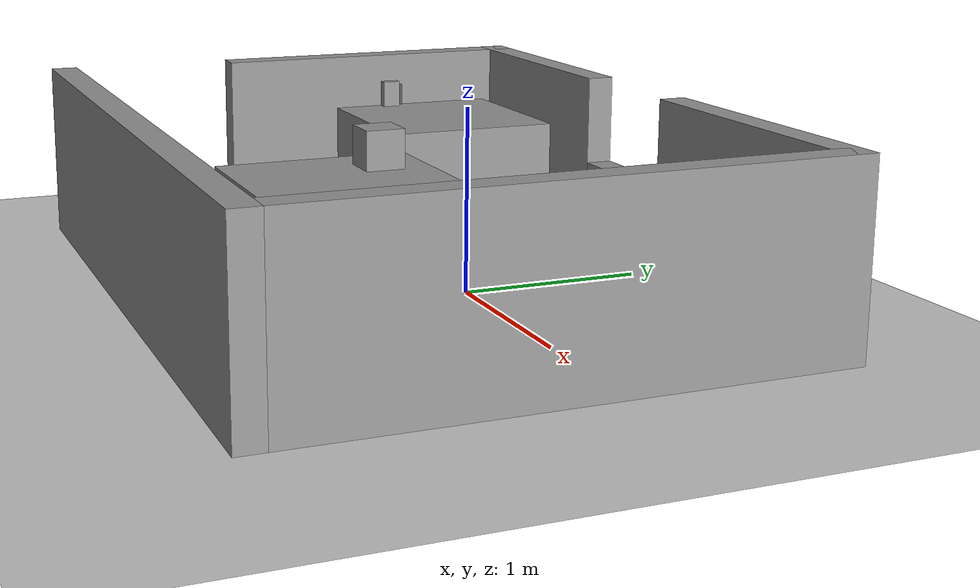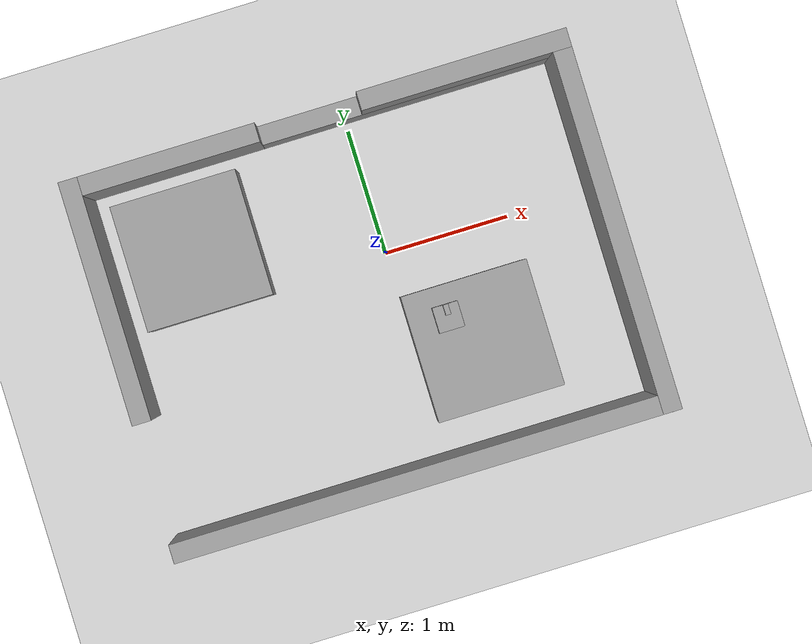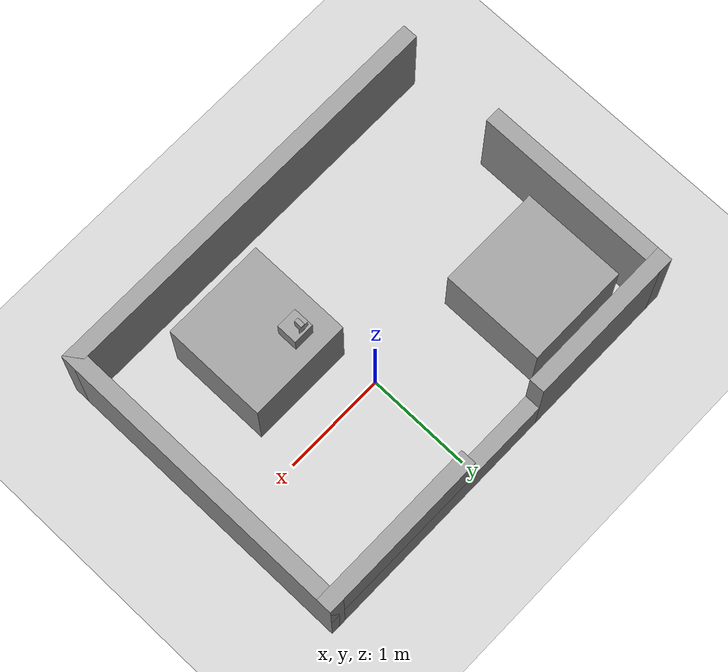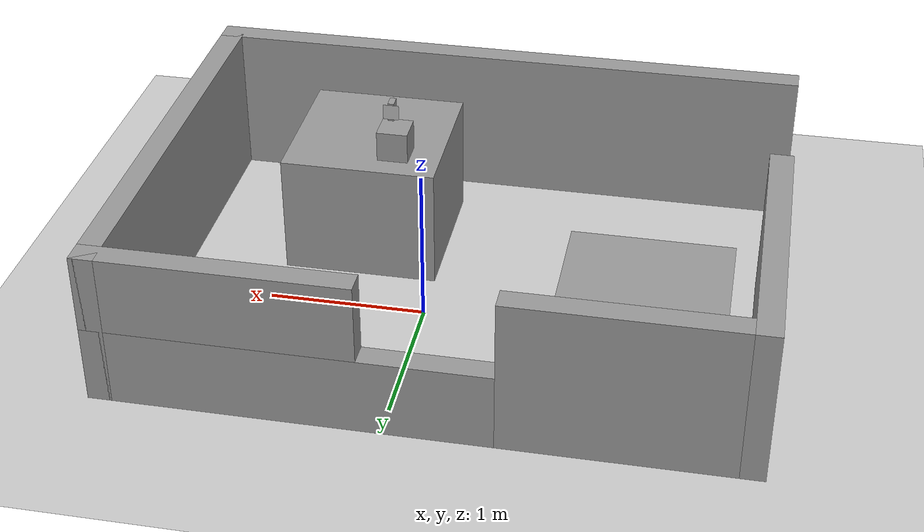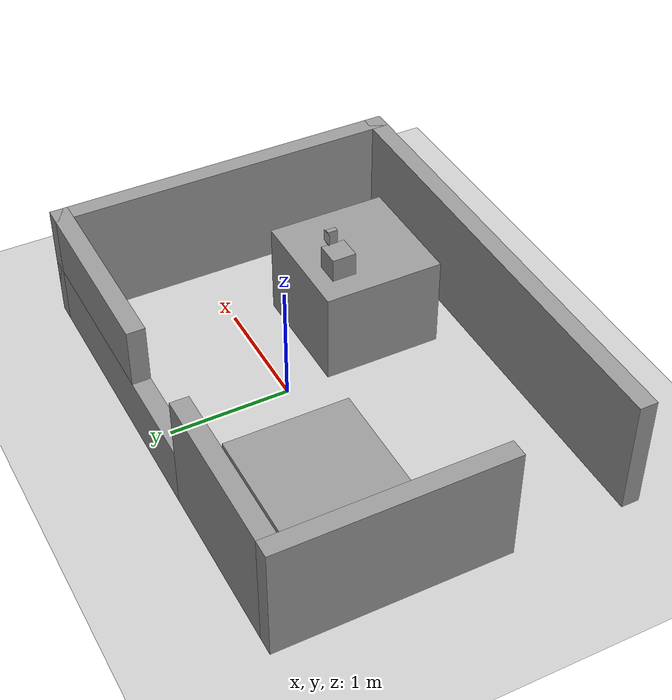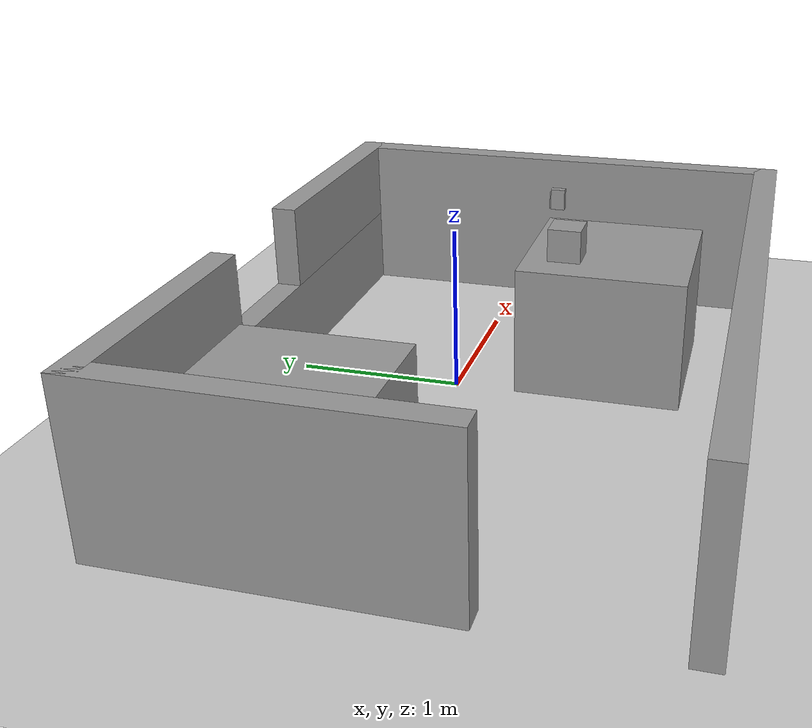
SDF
<sdf version="1.7">
 <world name="default">
  <light name="sun" type="directional">
   <pose>0 0 10 0 -0 0</pose>
   <diffuse>0.8 0.8 0.8 1</diffuse>
   <specular>0.2 0.2 0.2 1</specular>
   <attenuation>
    <range>1000</range>
    <constant>0.9</constant>
    <linear>0.01</linear>
    <quadratic>0.001</quadratic>
   </attenuation>
   <direction>-0.5 0.1 -0.9</direction>
   <spot><inner_angle>0</inner_angle><outer_angle>0</outer_angle><falloff>0</falloff></spot>
  </light>
  <model name="ground_plane">
   <static>1</static>
   <link name="link">
    <collision name="collision">
     <geometry><plane><normal>0 0 1</normal><size>100 100</size></plane></geometry>
     <surface><friction><ode><mu>100</mu><mu2>50</mu2></ode></friction></surface>
    </collision>
    <visual name="visual">
     <cast_shadows>0</cast_shadows>
     <geometry><plane><normal>0 0 1</normal><size>100 100</size></plane></geometry>
     <material>
      <script><uri>file://media/materials/scripts/gazebo.material</uri><name>Gazebo/Grey</name></script>
     </material>
    </visual>
   </link>
  </model>
  <gravity>0 0 -9.8</gravity>
  <magnetic_field>6e-06 2.3e-05 -4.2e-05</magnetic_field>
  <atmosphere type="adiabatic"/>
  <physics type="ode">
   <max_step_size>0.001</max_step_size>
   <real_time_factor>1</real_time_factor>
   <real_time_update_rate>1000</real_time_update_rate>
  </physics>
  <scene><ambient>0.4 0.4 0.4 1</ambient><background>0.7 0.7 0.7 1</background><shadows>1</shadows></scene>
  <audio><device>default</device></audio>
  <spherical_coordinates>
   <surface_model>EARTH_WGS84</surface_model>
   <latitude_deg>0</latitude_deg>
   <longitude_deg>0</longitude_deg>
   <elevation>0</elevation>
   <heading_deg>0</heading_deg>
  </spherical_coordinates>
  <model name="robot_office">
   <link name="Wall_10">
    <pose>-1.925 0 0 0 -0 1.5708</pose>
    <inertial>
     <mass>1</mass>
     <inertia><ixx>1</ixx><ixy>0</ixy><ixz>0</ixz><iyy>1</iyy><iyz>0</iyz><izz>1</izz></inertia>
    </inertial>
    <visual name="Wall_10_Visual_1">
     <pose>0.541901 0 0.5 0 -0 0</pose>
     <geometry><box><size>1.9162 0.15 1</size></box></geometry>
     <material>
      <script><uri>file://media/materials/scripts/gazebo.material</uri><name>Gazebo/Grey</name></script>
      <ambient>1 1 1 1</ambient>
      <shader type="pixel"><normal_map>__default__</normal_map></shader>
      <diffuse>0.7 0.7 0.7 1</diffuse>
      <specular>0.01 0.01 0.01 1</specular>
      <emissive>0 0 0 1</emissive>
     </material>
     <meta><layer>0</layer></meta>
    </visual>
    <collision name="Wall_10_Collision_1">
     <pose>0.541901 0 0.5 0 -0 0</pose>
     <geometry><box><size>1.9162 0.15 1</size></box></geometry>
     <surface>
      <friction>
       <ode><mu>1</mu><mu2>1</mu2><fdir1>0 0 0</fdir1><slip1>0</slip1><slip2>0</slip2></ode>
       <torsional>
        <coefficient>1</coefficient>
        <patch_radius>0</patch_radius>
        <surface_radius>0</surface_radius>
        <use_patch_radius>1</use_patch_radius>
        <ode><slip>0</slip></ode>
       </torsional>
      </friction>
      <bounce><restitution_coefficient>0</restitution_coefficient><threshold>1e+06</threshold></bounce>
      <contact>
       <collide_without_contact>0</collide_without_contact>
       <collide_without_contact_bitmask>1</collide_without_contact_bitmask>
       <collide_bitmask>1</collide_bitmask>
       <ode>
        <soft_cfm>0</soft_cfm>
        <soft_erp>0.2</soft_erp>
        <kp>1e+13</kp>
        <kd>1</kd>
        <max_vel>0.01</max_vel>
        <min_depth>0</min_depth>
       </ode>
       <bullet>
        <split_impulse>1</split_impulse>
        <split_impulse_penetration_threshold>-0.01</split_impulse_penetration_threshold>
        <soft_cfm>0</soft_cfm>
        <soft_erp>0.2</soft_erp>
        <kp>1e+13</kp>
        <kd>1</kd>
       </bullet>
      </contact>
     </surface>
    </collision>
   </link>
   <link name="Wall_7">
    <pose>0 1.425 0 0 -0 0</pose>
    <inertial>
     <mass>1</mass>
     <inertia><ixx>1</ixx><ixy>0</ixy><ixz>0</ixz><iyy>1</iyy><iyz>0</iyz><izz>1</izz></inertia>
    </inertial>
    <visual name="Wall_7_Visual_0">
     <pose>-1.22678 0 0.5 0 -0 0</pose>
     <geometry><box><size>1.54644 0.15 1</size></box></geometry>
     <material>
      <script><uri>file://media/materials/scripts/gazebo.material</uri><name>Gazebo/Grey</name></script>
      <ambient>1 1 1 1</ambient>
      <shader type="pixel"><normal_map>__default__</normal_map></shader>
      <diffuse>0.7 0.7 0.7 1</diffuse>
      <specular>0.01 0.01 0.01 1</specular>
      <emissive>0 0 0 1</emissive>
     </material>
     <meta><layer>0</layer></meta>
    </visual>
    <visual name="Wall_7_Visual_1">
     <pose>0.773218 0 0.25 0 -0 0</pose>
     <geometry><box><size>2.45356 0.15 0.5</size></box></geometry>
     <material>
      <script><uri>file://media/materials/scripts/gazebo.material</uri><name>Gazebo/Grey</name></script>
      <ambient>1 1 1 1</ambient>
      <shader type="pixel"><normal_map>__default__</normal_map></shader>
      <diffuse>0.7 0.7 0.7 1</diffuse>
      <specular>0.01 0.01 0.01 1</specular>
      <emissive>0 0 0 1</emissive>
     </material>
     <meta><layer>0</layer></meta>
    </visual>
    <visual name="Wall_7_Visual_2">
     <pose>1.17322 0 0.75 0 -0 0</pose>
     <geometry><box><size>1.65356 0.15 0.5</size></box></geometry>
     <material>
      <script><uri>file://media/materials/scripts/gazebo.material</uri><name>Gazebo/Grey</name></script>
      <ambient>1 1 1 1</ambient>
      <shader type="pixel"><normal_map>__default__</normal_map></shader>
      <diffuse>0.7 0.7 0.7 1</diffuse>
      <specular>0.01 0.01 0.01 1</specular>
      <emissive>0 0 0 1</emissive>
     </material>
     <meta><layer>0</layer></meta>
    </visual>
    <collision name="Wall_7_Collision_0">
     <pose>-1.22678 0 0.5 0 -0 0</pose>
     <geometry><box><size>1.54644 0.15 1</size></box></geometry>
     <surface>
      <friction>
       <ode><mu>1</mu><mu2>1</mu2><fdir1>0 0 0</fdir1><slip1>0</slip1><slip2>0</slip2></ode>
       <torsional>
        <coefficient>1</coefficient>
        <patch_radius>0</patch_radius>
        <surface_radius>0</surface_radius>
        <use_patch_radius>1</use_patch_radius>
        <ode><slip>0</slip></ode>
       </torsional>
      </friction>
      <bounce><restitution_coefficient>0</restitution_coefficient><threshold>1e+06</threshold></bounce>
      <contact>
       <collide_without_contact>0</collide_without_contact>
       <collide_without_contact_bitmask>1</collide_without_contact_bitmask>
       <collide_bitmask>1</collide_bitmask>
       <ode>
        <soft_cfm>0</soft_cfm>
        <soft_erp>0.2</soft_erp>
        <kp>1e+13</kp>
        <kd>1</kd>
        <max_vel>0.01</max_vel>
        <min_depth>0</min_depth>
       </ode>
       <bullet>
        <split_impulse>1</split_impulse>
        <split_impulse_penetration_threshold>-0.01</split_impulse_penetration_threshold>
        <soft_cfm>0</soft_cfm>
        <soft_erp>0.2</soft_erp>
        <kp>1e+13</kp>
        <kd>1</kd>
       </bullet>
      </contact>
     </surface>
    </collision>
    <collision name="Wall_7_Collision_1">
     <pose>0.773218 0 0.25 0 -0 0</pose>
     <geometry><box><size>2.45356 0.15 0.5</size></box></geometry>
     <surface>
      <friction>
       <ode><mu>1</mu><mu2>1</mu2><fdir1>0 0 0</fdir1><slip1>0</slip1><slip2>0</slip2></ode>
       <torsional>
        <coefficient>1</coefficient>
        <patch_radius>0</patch_radius>
        <surface_radius>0</surface_radius>
        <use_patch_radius>1</use_patch_radius>
        <ode><slip>0</slip></ode>
       </torsional>
      </friction>
      <bounce><restitution_coefficient>0</restitution_coefficient><threshold>1e+06</threshold></bounce>
      <contact>
       <collide_without_contact>0</collide_without_contact>
       <collide_without_contact_bitmask>1</collide_without_contact_bitmask>
       <collide_bitmask>1</collide_bitmask>
       <ode>
        <soft_cfm>0</soft_cfm>
        <soft_erp>0.2</soft_erp>
        <kp>1e+13</kp>
        <kd>1</kd>
        <max_vel>0.01</max_vel>
        <min_depth>0</min_depth>
       </ode>
       <bullet>
        <split_impulse>1</split_impulse>
        <split_impulse_penetration_threshold>-0.01</split_impulse_penetration_threshold>
        <soft_cfm>0</soft_cfm>
        <soft_erp>0.2</soft_erp>
        <kp>1e+13</kp>
        <kd>1</kd>
       </bullet>
      </contact>
     </surface>
    </collision>
    <collision name="Wall_7_Collision_2">
     <pose>1.17322 0 0.75 0 -0 0</pose>
     <geometry><box><size>1.65356 0.15 0.5</size></box></geometry>
     <surface>
      <friction>
       <ode><mu>1</mu><mu2>1</mu2><fdir1>0 0 0</fdir1><slip1>0</slip1><slip2>0</slip2></ode>
       <torsional>
        <coefficient>1</coefficient>
        <patch_radius>0</patch_radius>
        <surface_radius>0</surface_radius>
        <use_patch_radius>1</use_patch_radius>
        <ode><slip>0</slip></ode>
       </torsional>
      </friction>
      <bounce><restitution_coefficient>0</restitution_coefficient><threshold>1e+06</threshold></bounce>
      <contact>
       <collide_without_contact>0</collide_without_contact>
       <collide_without_contact_bitmask>1</collide_without_contact_bitmask>
       <collide_bitmask>1</collide_bitmask>
       <ode>
        <soft_cfm>0</soft_cfm>
        <soft_erp>0.2</soft_erp>
        <kp>1e+13</kp>
        <kd>1</kd>
        <max_vel>0.01</max_vel>
        <min_depth>0</min_depth>
       </ode>
       <bullet>
        <split_impulse>1</split_impulse>
        <split_impulse_penetration_threshold>-0.01</split_impulse_penetration_threshold>
        <soft_cfm>0</soft_cfm>
        <soft_erp>0.2</soft_erp>
        <kp>1e+13</kp>
        <kd>1</kd>
       </bullet>
      </contact>
     </surface>
    </collision>
   </link>
   <link name="Wall_8">
    <pose>1.925 0 0 0 0 -1.5708</pose>
    <inertial>
     <mass>1</mass>
     <inertia><ixx>1</ixx><ixy>0</ixy><ixz>0</ixz><iyy>1</iyy><iyz>0</iyz><izz>1</izz></inertia>
    </inertial>
    <visual name="Wall_8_Visual">
     <pose>0 0 0.5 0 -0 0</pose>
     <geometry><box><size>3 0.15 1</size></box></geometry>
     <material>
      <script><uri>file://media/materials/scripts/gazebo.material</uri><name>Gazebo/Grey</name></script>
      <ambient>1 1 1 1</ambient>
      <shader type="pixel"><normal_map>__default__</normal_map></shader>
      <diffuse>0.7 0.7 0.7 1</diffuse>
      <specular>0.01 0.01 0.01 1</specular>
      <emissive>0 0 0 1</emissive>
     </material>
     <meta><layer>0</layer></meta>
    </visual>
    <collision name="Wall_8_Collision">
     <pose>0 0 0.5 0 -0 0</pose>
     <geometry><box><size>3 0.15 1</size></box></geometry>
     <surface>
      <friction>
       <ode><mu>1</mu><mu2>1</mu2><fdir1>0 0 0</fdir1><slip1>0</slip1><slip2>0</slip2></ode>
       <torsional>
        <coefficient>1</coefficient>
        <patch_radius>0</patch_radius>
        <surface_radius>0</surface_radius>
        <use_patch_radius>1</use_patch_radius>
        <ode><slip>0</slip></ode>
       </torsional>
      </friction>
      <bounce><restitution_coefficient>0</restitution_coefficient><threshold>1e+06</threshold></bounce>
      <contact>
       <collide_without_contact>0</collide_without_contact>
       <collide_without_contact_bitmask>1</collide_without_contact_bitmask>
       <collide_bitmask>1</collide_bitmask>
       <ode>
        <soft_cfm>0</soft_cfm>
        <soft_erp>0.2</soft_erp>
        <kp>1e+13</kp>
        <kd>1</kd>
        <max_vel>0.01</max_vel>
        <min_depth>0</min_depth>
       </ode>
       <bullet>
        <split_impulse>1</split_impulse>
        <split_impulse_penetration_threshold>-0.01</split_impulse_penetration_threshold>
        <soft_cfm>0</soft_cfm>
        <soft_erp>0.2</soft_erp>
        <kp>1e+13</kp>
        <kd>1</kd>
       </bullet>
      </contact>
     </surface>
    </collision>
   </link>
   <link name="Wall_9">
    <pose>0 -1.425 0 0 -0 3.14159</pose>
    <inertial>
     <mass>1</mass>
     <inertia><ixx>1</ixx><ixy>0</ixy><ixz>0</ixz><iyy>1</iyy><iyz>0</iyz><izz>1</izz></inertia>
    </inertial>
    <visual name="Wall_9_Visual">
     <pose>0 0 0.5 0 -0 0</pose>
     <geometry><box><size>4 0.15 1</size></box></geometry>
     <material>
      <script><uri>file://media/materials/scripts/gazebo.material</uri><name>Gazebo/Grey</name></script>
      <ambient>1 1 1 1</ambient>
      <shader type="pixel"><normal_map>__default__</normal_map></shader>
      <diffuse>0.7 0.7 0.7 1</diffuse>
      <specular>0.01 0.01 0.01 1</specular>
      <emissive>0 0 0 1</emissive>
     </material>
     <meta><layer>0</layer></meta>
    </visual>
    <collision name="Wall_9_Collision">
     <pose>0 0 0.5 0 -0 0</pose>
     <geometry><box><size>4 0.15 1</size></box></geometry>
     <surface>
      <friction>
       <ode><mu>1</mu><mu2>1</mu2><fdir1>0 0 0</fdir1><slip1>0</slip1><slip2>0</slip2></ode>
       <torsional>
        <coefficient>1</coefficient>
        <patch_radius>0</patch_radius>
        <surface_radius>0</surface_radius>
        <use_patch_radius>1</use_patch_radius>
        <ode><slip>0</slip></ode>
       </torsional>
      </friction>
      <bounce><restitution_coefficient>0</restitution_coefficient><threshold>1e+06</threshold></bounce>
      <contact>
       <collide_without_contact>0</collide_without_contact>
       <collide_without_contact_bitmask>1</collide_without_contact_bitmask>
       <collide_bitmask>1</collide_bitmask>
       <ode>
        <soft_cfm>0</soft_cfm>
        <soft_erp>0.2</soft_erp>
        <kp>1e+13</kp>
        <kd>1</kd>
        <max_vel>0.01</max_vel>
        <min_depth>0</min_depth>
       </ode>
       <bullet>
        <split_impulse>1</split_impulse>
        <split_impulse_penetration_threshold>-0.01</split_impulse_penetration_threshold>
        <soft_cfm>0</soft_cfm>
        <soft_erp>0.2</soft_erp>
        <kp>1e+13</kp>
        <kd>1</kd>
       </bullet>
      </contact>
     </surface>
    </collision>
   </link>
   <static>1</static>
   <pose>-0.21484 -0.284139 0 0 -0 0</pose>
  </model>
  <model name="desk2">
   <link name="link">
    <inertial>
     <mass>10</mass>
     <inertia>
      <ixx>0.408333</ixx>
      <ixy>0</ixy>
      <ixz>0</ixz>
      <iyy>0.408333</iyy>
      <iyz>0</iyz>
      <izz>0.833333</izz>
     </inertia>
    </inertial>
    <visual name="visual">
     <geometry><box><size>1 1 0.7</size></box></geometry>
     <material>
      <script><name>Gazebo/Grey</name><uri>file://media/materials/scripts/gazebo.material</uri></script>
      <shader type="pixel"><normal_map>__default__</normal_map></shader>
      <ambient>0.3 0.3 0.3 1</ambient>
      <diffuse>0.7 0.7 0.7 1</diffuse>
      <specular>0.01 0.01 0.01 1</specular>
      <emissive>0 0 0 1</emissive>
     </material>
    </visual>
    <collision name="collision">
     <geometry><box><size>1 1 0.7</size></box></geometry>
     <surface>
      <friction>
       <ode><mu>1</mu><mu2>1</mu2><fdir1>0 0 0</fdir1><slip1>0</slip1><slip2>0</slip2></ode>
       <torsional>
        <coefficient>1</coefficient>
        <patch_radius>0</patch_radius>
        <surface_radius>0</surface_radius>
        <use_patch_radius>1</use_patch_radius>
        <ode><slip>0</slip></ode>
       </torsional>
      </friction>
      <bounce><restitution_coefficient>0</restitution_coefficient><threshold>1e+06</threshold></bounce>
      <contact>
       <collide_without_contact>0</collide_without_contact>
       <collide_without_contact_bitmask>1</collide_without_contact_bitmask>
       <collide_bitmask>1</collide_bitmask>
       <ode>
        <soft_cfm>0</soft_cfm>
        <soft_erp>0.2</soft_erp>
        <kp>1e+13</kp>
        <kd>1</kd>
        <max_vel>0.01</max_vel>
        <min_depth>0</min_depth>
       </ode>
       <bullet>
        <split_impulse>1</split_impulse>
        <split_impulse_penetration_threshold>-0.01</split_impulse_penetration_threshold>
        <soft_cfm>0</soft_cfm>
        <soft_erp>0.2</soft_erp>
        <kp>1e+13</kp>
        <kd>1</kd>
       </bullet>
      </contact>
     </surface>
    </collision>
   </link>
   <static>0</static>
   <pose>-1.41999 0.443966 0.349995 0 1e-05 0</pose>
  </model>
  <model name="desk_with_stacked_boxes">
   <link name="link">
    <inertial>
     <mass>10</mass>
     <inertia><ixx>1.35342</ixx><ixy>0</ixy><ixz>0</ixz><iyy>1.35342</iyy><iyz>0</iyz><izz>1.66667</izz></inertia>
    </inertial>
    <visual name="visual">
     <geometry><box><size>1 1 0.79</size></box></geometry>
     <material>
      <script><name>Gazebo/Grey</name><uri>file://media/materials/scripts/gazebo.material</uri></script>
      <shader type="pixel"><normal_map>__default__</normal_map></shader>
      <ambient>0.3 0.3 0.3 1</ambient>
      <diffuse>0.7 0.7 0.7 1</diffuse>
      <specular>0.01 0.01 0.01 1</specular>
      <emissive>0 0 0 1</emissive>
     </material>
    </visual>
    <collision name="collision">
     <geometry><box><size>1 1 0.79</size></box></geometry>
     <surface>
      <friction>
       <ode><mu>1</mu><mu2>1</mu2><fdir1>0 0 0</fdir1><slip1>0</slip1><slip2>0</slip2></ode>
       <torsional>
        <coefficient>1</coefficient>
        <patch_radius>0</patch_radius>
        <surface_radius>0</surface_radius>
        <use_patch_radius>1</use_patch_radius>
        <ode><slip>0</slip></ode>
       </torsional>
      </friction>
      <bounce><restitution_coefficient>0</restitution_coefficient><threshold>1e+06</threshold></bounce>
      <contact>
       <collide_without_contact>0</collide_without_contact>
       <collide_without_contact_bitmask>1</collide_without_contact_bitmask>
       <collide_bitmask>1</collide_bitmask>
       <ode>
        <soft_cfm>0</soft_cfm>
        <soft_erp>0.2</soft_erp>
        <kp>1e+13</kp>
        <kd>1</kd>
        <max_vel>0.01</max_vel>
        <min_depth>0</min_depth>
       </ode>
       <bullet>
        <split_impulse>1</split_impulse>
        <split_impulse_penetration_threshold>-0.01</split_impulse_penetration_threshold>
        <soft_cfm>0</soft_cfm>
        <soft_erp>0.2</soft_erp>
        <kp>1e+13</kp>
        <kd>1</kd>
       </bullet>
      </contact>
     </surface>
    </collision>
   </link>
   <link name="link_1_clone">
    <inertial>
     <mass>0.0597686</mass>
     <inertia>
      <ixx>0.00160821</ixx>
      <ixy>0</ixy>
      <ixz>0</ixz>
      <iyy>0.00168872</iyy>
      <iyz>0</iyz>
      <izz>0.00134858</izz>
     </inertia>
    </inertial>
    <pose>-0.200264 0.251815 0.495006 0 -2.2e-05 -0.001062</pose>
    <visual name="visual">
     <geometry><box><size>0.2 0.2 0.2</size></box></geometry>
     <material>
      <lighting>1</lighting>
      <script><uri>file://media/materials/scripts/gazebo.material</uri><name>Gazebo/Grey</name></script>
      <shader type="pixel"><normal_map>__default__</normal_map></shader>
      <ambient>0.3 0.3 0.3 1</ambient>
      <diffuse>0.7 0.7 0.7 1</diffuse>
      <specular>0.01 0.01 0.01 1</specular>
      <emissive>0 0 0 1</emissive>
     </material>
    </visual>
    <collision name="collision">
     <geometry><box><size>0.2 0.2 0.2</size></box></geometry>
     <surface>
      <friction>
       <ode><mu>1</mu><mu2>1</mu2><fdir1>0 0 0</fdir1><slip1>0</slip1><slip2>0</slip2></ode>
       <torsional>
        <coefficient>1</coefficient>
        <patch_radius>0</patch_radius>
        <surface_radius>0</surface_radius>
        <use_patch_radius>1</use_patch_radius>
        <ode><slip>0</slip></ode>
       </torsional>
      </friction>
      <bounce><restitution_coefficient>0</restitution_coefficient><threshold>1e+06</threshold></bounce>
      <contact>
       <collide_without_contact>0</collide_without_contact>
       <collide_without_contact_bitmask>1</collide_without_contact_bitmask>
       <collide_bitmask>1</collide_bitmask>
       <ode>
        <soft_cfm>0</soft_cfm>
        <soft_erp>0.2</soft_erp>
        <kp>1e+13</kp>
        <kd>1</kd>
        <max_vel>0.01</max_vel>
        <min_depth>0</min_depth>
       </ode>
       <bullet>
        <split_impulse>1</split_impulse>
        <split_impulse_penetration_threshold>-0.01</split_impulse_penetration_threshold>
        <soft_cfm>0</soft_cfm>
        <soft_erp>0.2</soft_erp>
        <kp>1e+13</kp>
        <kd>1</kd>
       </bullet>
      </contact>
     </surface>
    </collision>
   </link>
   <link name="link_2_clone">
    <inertial>
     <mass>0.00052912</mass>
     <inertia><ixx>7.1e-07</ixx><ixy>0</ixy><ixz>0</ixz><iyy>8.7e-07</iyy><iyz>0</iyz><izz>4.4e-07</izz></inertia>
    </inertial>
    <pose>-0.200007 0.311844 0.755006 0 -2.2e-05 1.5708</pose>
    <visual name="visual">
     <geometry><box><size>0.08 0.04 0.12</size></box></geometry>
     <material>
      <lighting>0</lighting>
      <script><uri>file://media/materials/scripts/gazebo.material</uri><name>Gazebo/Grey</name></script>
      <shader type="pixel"><normal_map>__default__</normal_map></shader>
      <ambient>0.3 0.3 0.3 1</ambient>
      <diffuse>0.7 0.7 0.7 1</diffuse>
      <specular>0.01 0.01 0.01 1</specular>
      <emissive>0 0 0 1</emissive>
     </material>
    </visual>
    <collision name="collision">
     <geometry><box><size>0.08 0.04 0.12</size></box></geometry>
     <surface>
      <friction>
       <ode><mu>1</mu><mu2>1</mu2><fdir1>0 0 0</fdir1><slip1>0</slip1><slip2>0</slip2></ode>
       <torsional>
        <coefficient>1</coefficient>
        <patch_radius>0</patch_radius>
        <surface_radius>0</surface_radius>
        <use_patch_radius>1</use_patch_radius>
        <ode><slip>0</slip></ode>
       </torsional>
      </friction>
      <bounce><restitution_coefficient>0</restitution_coefficient><threshold>1e+06</threshold></bounce>
      <contact>
       <collide_without_contact>0</collide_without_contact>
       <collide_without_contact_bitmask>1</collide_without_contact_bitmask>
       <collide_bitmask>1</collide_bitmask>
       <ode>
        <soft_cfm>0</soft_cfm>
        <soft_erp>0.2</soft_erp>
        <kp>1e+13</kp>
        <kd>1</kd>
        <max_vel>0.01</max_vel>
        <min_depth>0</min_depth>
       </ode>
       <bullet>
        <split_impulse>1</split_impulse>
        <split_impulse_penetration_threshold>-0.01</split_impulse_penetration_threshold>
        <soft_cfm>0</soft_cfm>
        <soft_erp>0.2</soft_erp>
        <kp>1e+13</kp>
        <kd>1</kd>
       </bullet>
      </contact>
     </surface>
    </collision>
   </link>
   <model name="Apriltag36_11_00000">
    <link name="main">
     <visual name="main_Visual">
      <geometry><box><size>0.1 0.0001 0.1</size></box></geometry>
      <material>
       <script>
        <uri>model://Apriltag36_11_00000/materials/scripts</uri>
        <uri>model://Apriltag36_11_00000/materials/textures</uri>
        <name>Apriltag36_11_00000</name>
       </script>
      </material>
     </visual>
    </link>
    <static>1</static>
    <pose>-0.200397 0.352957 0.755006 0 -0 0</pose>
   </model>
   <joint name="link_1_clone_JOINT_1" type="fixed">
    <parent>link_1_clone</parent>
    <child>link_2_clone</child>
    <physics>
     <ode><limit><cfm>0</cfm><erp>0.2</erp></limit><suspension><cfm>0</cfm><erp>0.2</erp></suspension></ode>
    </physics>
   </joint>
   <joint name="link_2_clone_JOINT_0" type="fixed">
    <parent>link_2_clone</parent>
    <child>Apriltag36_11_00000::main</child>
    <physics>
     <ode><limit><cfm>0</cfm><erp>0.2</erp></limit><suspension><cfm>0</cfm><erp>0.2</erp></suspension></ode>
    </physics>
   </joint>
   <joint name="link_JOINT_0" type="fixed">
    <parent>link</parent>
    <child>link_1_clone</child>
    <physics>
     <ode><limit><cfm>0</cfm><erp>0.2</erp></limit><suspension><cfm>0</cfm><erp>0.2</erp></suspension></ode>
    </physics>
   </joint>
   <static>0</static>
   <pose>0.503264 -0.86128 0.395 0 -0 0.001066</pose>
  </model>
 </world>
</sdf>
